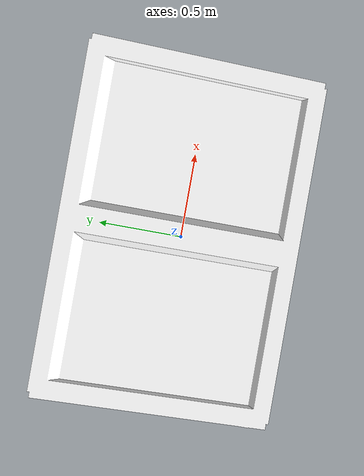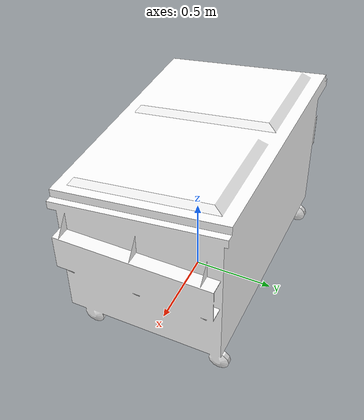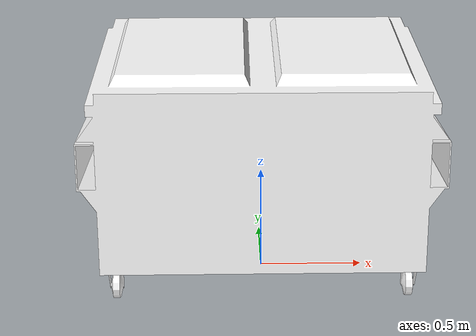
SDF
<?xml version="1.0"?>
<sdf version="1.4">
  <model name="Dumpster">
    <link name="link">
      <collision name="collision">
        <geometry>
          <mesh>
            <uri>model://dumpster/meshes/dumpster.dae</uri>
          </mesh>
        </geometry>
      </collision>
      <visual name="visual">
        <geometry>
          <mesh>
            <uri>model://dumpster/meshes/dumpster.dae</uri>
          </mesh>
        </geometry>
        <material>
          <script>
            <uri>model://dumpster/materials/scripts</uri>
            <uri>model://dumpster/materials/textures</uri>
            <name>Dumpster/Diffuse</name>
          </script>
        </material>
      </visual>
    </link>
  </model>
</sdf>
